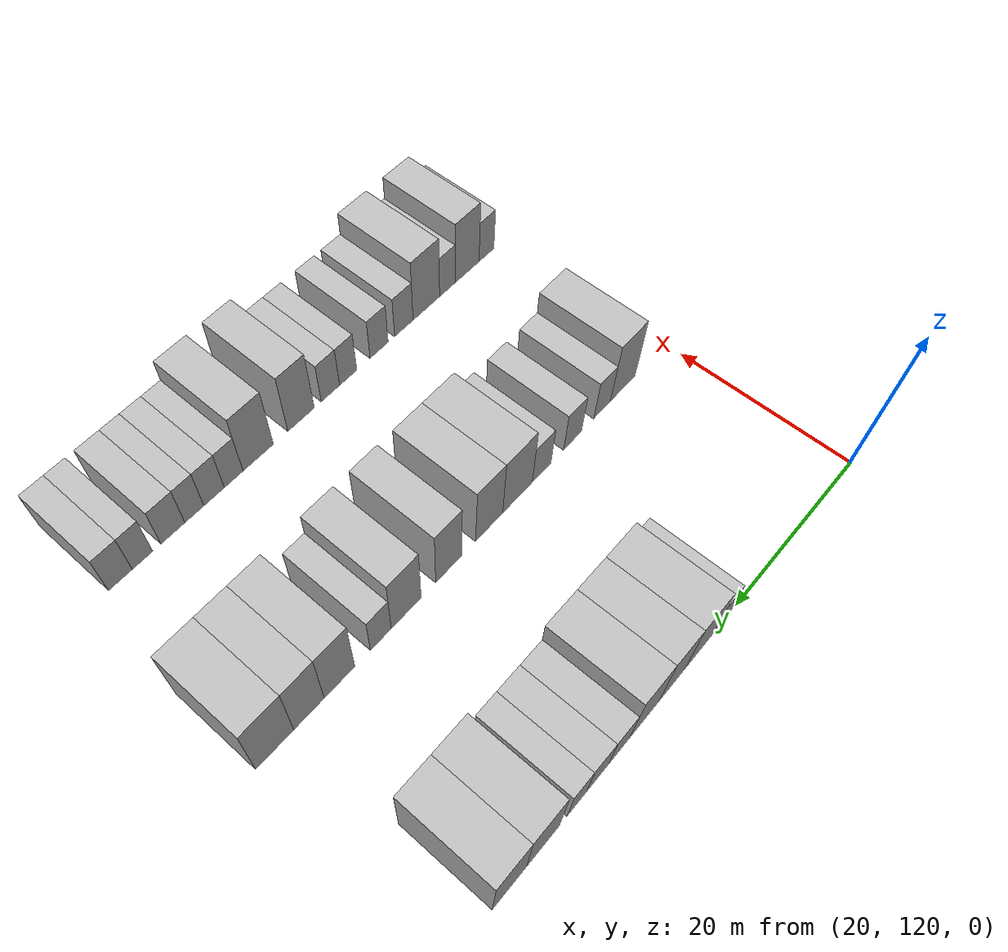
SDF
<sdf version="1.6">
 <world name="default">
  <model name="building_124">
   <static>1</static>
   <pose>25.0000 142.3898 0 0.000000 0.000000 0.000000</pose>
   <link name="link">
    <pose>0 0 3.00 0 0 0</pose>
    <collision name="collision"><geometry><box><size>10.0000 2.7167 6.0000</size></box></geometry></collision>
    <visual name="visual">
     <cast_shadows>0</cast_shadows>
     <geometry><box><size>10.0000 2.7167 6.0000</size></box></geometry>
     <material>
      <script>
       <uri>model://HANNAS_wall/materials/scripts</uri>
       <uri>model://HANNAS_wall/materials/textures</uri>
       <name>vrc/HANNAS_wall</name>
      </script>
     </material>
    </visual>
   </link>
  </model>
  <model name="building_125">
   <static>1</static>
   <pose>25.0000 145.9043 0 0.000000 0.000000 0.000000</pose>
   <link name="link">
    <pose>0 0 4.50 0 0 0</pose>
    <collision name="collision"><geometry><box><size>10.0000 4.3124 9.0000</size></box></geometry></collision>
    <visual name="visual">
     <cast_shadows>0</cast_shadows>
     <geometry><box><size>10.0000 4.3124 9.0000</size></box></geometry>
     <material>
      <script>
       <uri>model://HANNAS_wall/materials/scripts</uri>
       <uri>model://HANNAS_wall/materials/textures</uri>
       <name>vrc/HANNAS_wall</name>
      </script>
     </material>
    </visual>
   </link>
  </model>
  <model name="building_126">
   <static>1</static>
   <pose>25.0000 150.0240 0 0.000000 0.000000 0.000000</pose>
   <link name="link">
    <pose>0 0 4.50 0 0 0</pose>
    <collision name="collision"><geometry><box><size>10.0000 3.9271 9.0000</size></box></geometry></collision>
    <visual name="visual">
     <cast_shadows>0</cast_shadows>
     <geometry><box><size>10.0000 3.9271 9.0000</size></box></geometry>
     <material>
      <script>
       <uri>model://HANNAS_wall/materials/scripts</uri>
       <uri>model://HANNAS_wall/materials/textures</uri>
       <name>vrc/HANNAS_wall</name>
      </script>
     </material>
    </visual>
   </link>
  </model>
  <model name="building_127">
   <static>1</static>
   <pose>25.0000 154.1258 0 0.000000 0.000000 0.000000</pose>
   <link name="link">
    <pose>0 0 4.50 0 0 0</pose>
    <collision name="collision"><geometry><box><size>10.0000 4.2764 9.0000</size></box></geometry></collision>
    <visual name="visual">
     <cast_shadows>0</cast_shadows>
     <geometry><box><size>10.0000 4.2764 9.0000</size></box></geometry>
     <material>
      <script>
       <uri>model://HANNAS_wall/materials/scripts</uri>
       <uri>model://HANNAS_wall/materials/textures</uri>
       <name>vrc/HANNAS_wall</name>
      </script>
     </material>
    </visual>
   </link>
  </model>
  <model name="building_128">
   <static>1</static>
   <pose>25.0000 157.7301 0 0.000000 0.000000 0.000000</pose>
   <link name="link">
    <pose>0 0 3.00 0 0 0</pose>
    <collision name="collision"><geometry><box><size>10.0000 2.9322 6.0000</size></box></geometry></collision>
    <visual name="visual">
     <cast_shadows>0</cast_shadows>
     <geometry><box><size>10.0000 2.9322 6.0000</size></box></geometry>
     <material>
      <script>
       <uri>model://HANNAS_wall/materials/scripts</uri>
       <uri>model://HANNAS_wall/materials/textures</uri>
       <name>vrc/HANNAS_wall</name>
      </script>
     </material>
    </visual>
   </link>
  </model>
  <model name="building_129">
   <static>1</static>
   <pose>25.0000 160.6939 0 0.000000 0.000000 0.000000</pose>
   <link name="link">
    <pose>0 0 3.00 0 0 0</pose>
    <collision name="collision"><geometry><box><size>10.0000 2.9956 6.0000</size></box></geometry></collision>
    <visual name="visual">
     <cast_shadows>0</cast_shadows>
     <geometry><box><size>10.0000 2.9956 6.0000</size></box></geometry>
     <material>
      <script>
       <uri>model://HANNAS_wall/materials/scripts</uri>
       <uri>model://HANNAS_wall/materials/textures</uri>
       <name>vrc/HANNAS_wall</name>
      </script>
     </material>
    </visual>
   </link>
  </model>
  <model name="building_130">
   <static>1</static>
   <pose>25.0000 163.5191 0 0.000000 0.000000 0.000000</pose>
   <link name="link">
    <pose>0 0 3.00 0 0 0</pose>
    <collision name="collision"><geometry><box><size>10.0000 2.6548 6.0000</size></box></geometry></collision>
    <visual name="visual">
     <cast_shadows>0</cast_shadows>
     <geometry><box><size>10.0000 2.6548 6.0000</size></box></geometry>
     <material>
      <script>
       <uri>model://HANNAS_wall/materials/scripts</uri>
       <uri>model://HANNAS_wall/materials/textures</uri>
       <name>vrc/HANNAS_wall</name>
      </script>
     </material>
    </visual>
   </link>
  </model>
  <model name="building_131">
   <static>1</static>
   <pose>25.0000 167.9849 0 0.000000 0.000000 0.000000</pose>
   <link name="link">
    <pose>0 0 4.50 0 0 0</pose>
    <collision name="collision"><geometry><box><size>10.0000 4.2767 9.0000</size></box></geometry></collision>
    <visual name="visual">
     <cast_shadows>0</cast_shadows>
     <geometry><box><size>10.0000 4.2767 9.0000</size></box></geometry>
     <material>
      <script>
       <uri>model://HANNAS_wall/materials/scripts</uri>
       <uri>model://HANNAS_wall/materials/textures</uri>
       <name>vrc/HANNAS_wall</name>
      </script>
     </material>
    </visual>
   </link>
  </model>
  <model name="building_132">
   <static>1</static>
   <pose>25.0000 172.2452 0 0.000000 0.000000 0.000000</pose>
   <link name="link">
    <pose>0 0 4.50 0 0 0</pose>
    <collision name="collision"><geometry><box><size>10.0000 4.2440 9.0000</size></box></geometry></collision>
    <visual name="visual">
     <cast_shadows>0</cast_shadows>
     <geometry><box><size>10.0000 4.2440 9.0000</size></box></geometry>
     <material>
      <script>
       <uri>model://HANNAS_wall/materials/scripts</uri>
       <uri>model://HANNAS_wall/materials/textures</uri>
       <name>vrc/HANNAS_wall</name>
      </script>
     </material>
    </visual>
   </link>
  </model>
  <model name="building_314">
   <static>1</static>
   <pose>47.0000 127.5316 0 0.000000 0.000000 0.000000</pose>
   <link name="link">
    <pose>0 0 4.50 0 0 0</pose>
    <collision name="collision"><geometry><box><size>10.0000 4.1809 9.0000</size></box></geometry></collision>
    <visual name="visual">
     <cast_shadows>0</cast_shadows>
     <geometry><box><size>10.0000 4.1809 9.0000</size></box></geometry>
     <material>
      <script>
       <uri>model://HANNAS_wall/materials/scripts</uri>
       <uri>model://HANNAS_wall/materials/textures</uri>
       <name>vrc/HANNAS_wall</name>
      </script>
     </material>
    </visual>
   </link>
  </model>
  <model name="building_315">
   <static>1</static>
   <pose>47.0000 131.0111 0 0.000000 0.000000 0.000000</pose>
   <link name="link">
    <pose>0 0 3.00 0 0 0</pose>
    <collision name="collision"><geometry><box><size>10.0000 2.7779 6.0000</size></box></geometry></collision>
    <visual name="visual">
     <cast_shadows>0</cast_shadows>
     <geometry><box><size>10.0000 2.7779 6.0000</size></box></geometry>
     <material>
      <script>
       <uri>model://HANNAS_wall/materials/scripts</uri>
       <uri>model://HANNAS_wall/materials/textures</uri>
       <name>vrc/HANNAS_wall</name>
      </script>
     </material>
    </visual>
   </link>
  </model>
  <model name="building_316">
   <static>1</static>
   <pose>47.0000 135.8465 0 0.000000 0.000000 0.000000</pose>
   <link name="link">
    <pose>0 0 3.00 0 0 0</pose>
    <collision name="collision"><geometry><box><size>10.0000 2.8929 6.0000</size></box></geometry></collision>
    <visual name="visual">
     <cast_shadows>0</cast_shadows>
     <geometry><box><size>10.0000 2.8929 6.0000</size></box></geometry>
     <material>
      <script>
       <uri>model://HANNAS_wall/materials/scripts</uri>
       <uri>model://HANNAS_wall/materials/textures</uri>
       <name>vrc/HANNAS_wall</name>
      </script>
     </material>
    </visual>
   </link>
  </model>
  <model name="building_317">
   <static>1</static>
   <pose>47.0000 140.7449 0 0.000000 0.000000 0.000000</pose>
   <link name="link">
    <pose>0 0 3.00 0 0 0</pose>
    <collision name="collision"><geometry><box><size>10.0000 2.9039 6.0000</size></box></geometry></collision>
    <visual name="visual">
     <cast_shadows>0</cast_shadows>
     <geometry><box><size>10.0000 2.9039 6.0000</size></box></geometry>
     <material>
      <script>
       <uri>model://HANNAS_wall/materials/scripts</uri>
       <uri>model://HANNAS_wall/materials/textures</uri>
       <name>vrc/HANNAS_wall</name>
      </script>
     </material>
    </visual>
   </link>
  </model>
  <model name="building_318">
   <static>1</static>
   <pose>47.0000 144.4257 0 0.000000 0.000000 0.000000</pose>
   <link name="link">
    <pose>0 0 4.50 0 0 0</pose>
    <collision name="collision"><geometry><box><size>10.0000 4.4578 9.0000</size></box></geometry></collision>
    <visual name="visual">
     <cast_shadows>0</cast_shadows>
     <geometry><box><size>10.0000 4.4578 9.0000</size></box></geometry>
     <material>
      <script>
       <uri>model://HANNAS_wall/materials/scripts</uri>
       <uri>model://HANNAS_wall/materials/textures</uri>
       <name>vrc/HANNAS_wall</name>
      </script>
     </material>
    </visual>
   </link>
  </model>
  <model name="building_319">
   <static>1</static>
   <pose>47.0000 148.6413 0 0.000000 0.000000 0.000000</pose>
   <link name="link">
    <pose>0 0 4.50 0 0 0</pose>
    <collision name="collision"><geometry><box><size>10.0000 3.9733 9.0000</size></box></geometry></collision>
    <visual name="visual">
     <cast_shadows>0</cast_shadows>
     <geometry><box><size>10.0000 3.9733 9.0000</size></box></geometry>
     <material>
      <script>
       <uri>model://HANNAS_wall/materials/scripts</uri>
       <uri>model://HANNAS_wall/materials/textures</uri>
       <name>vrc/HANNAS_wall</name>
      </script>
     </material>
    </visual>
   </link>
  </model>
  <model name="building_320">
   <static>1</static>
   <pose>47.0000 154.4402 0 0.000000 0.000000 0.000000</pose>
   <link name="link">
    <pose>0 0 4.50 0 0 0</pose>
    <collision name="collision"><geometry><box><size>10.0000 3.6245 9.0000</size></box></geometry></collision>
    <visual name="visual">
     <cast_shadows>0</cast_shadows>
     <geometry><box><size>10.0000 3.6245 9.0000</size></box></geometry>
     <material>
      <script>
       <uri>model://HANNAS_wall/materials/scripts</uri>
       <uri>model://HANNAS_wall/materials/textures</uri>
       <name>vrc/HANNAS_wall</name>
      </script>
     </material>
    </visual>
   </link>
  </model>
  <model name="building_321">
   <static>1</static>
   <pose>47.0000 160.2484 0 0.000000 0.000000 0.000000</pose>
   <link name="link">
    <pose>0 0 4.50 0 0 0</pose>
    <collision name="collision"><geometry><box><size>10.0000 3.9920 9.0000</size></box></geometry></collision>
    <visual name="visual">
     <cast_shadows>0</cast_shadows>
     <geometry><box><size>10.0000 3.9920 9.0000</size></box></geometry>
     <material>
      <script>
       <uri>model://HANNAS_wall/materials/scripts</uri>
       <uri>model://HANNAS_wall/materials/textures</uri>
       <name>vrc/HANNAS_wall</name>
      </script>
     </material>
    </visual>
   </link>
  </model>
  <model name="building_322">
   <static>1</static>
   <pose>47.0000 163.6041 0 0.000000 0.000000 0.000000</pose>
   <link name="link">
    <pose>0 0 3.00 0 0 0</pose>
    <collision name="collision"><geometry><box><size>10.0000 2.7194 6.0000</size></box></geometry></collision>
    <visual name="visual">
     <cast_shadows>0</cast_shadows>
     <geometry><box><size>10.0000 2.7194 6.0000</size></box></geometry>
     <material>
      <script>
       <uri>model://HANNAS_wall/materials/scripts</uri>
       <uri>model://HANNAS_wall/materials/textures</uri>
       <name>vrc/HANNAS_wall</name>
      </script>
     </material>
    </visual>
   </link>
  </model>
  <model name="building_323">
   <static>1</static>
   <pose>47.0000 168.8767 0 0.000000 0.000000 0.000000</pose>
   <link name="link">
    <pose>0 0 4.50 0 0 0</pose>
    <collision name="collision"><geometry><box><size>10.0000 3.8259 9.0000</size></box></geometry></collision>
    <visual name="visual">
     <cast_shadows>0</cast_shadows>
     <geometry><box><size>10.0000 3.8259 9.0000</size></box></geometry>
     <material>
      <script>
       <uri>model://HANNAS_wall/materials/scripts</uri>
       <uri>model://HANNAS_wall/materials/textures</uri>
       <name>vrc/HANNAS_wall</name>
      </script>
     </material>
    </visual>
   </link>
  </model>
  <model name="building_324">
   <static>1</static>
   <pose>47.0000 172.6374 0 0.000000 0.000000 0.000000</pose>
   <link name="link">
    <pose>0 0 4.50 0 0 0</pose>
    <collision name="collision"><geometry><box><size>10.0000 3.6955 9.0000</size></box></geometry></collision>
    <visual name="visual">
     <cast_shadows>0</cast_shadows>
     <geometry><box><size>10.0000 3.6955 9.0000</size></box></geometry>
     <material>
      <script>
       <uri>model://HANNAS_wall/materials/scripts</uri>
       <uri>model://HANNAS_wall/materials/textures</uri>
       <name>vrc/HANNAS_wall</name>
      </script>
     </material>
    </visual>
   </link>
  </model>
  <model name="building_325">
   <static>1</static>
   <pose>47.0000 176.7284 0 0.000000 0.000000 0.000000</pose>
   <link name="link">
    <pose>0 0 4.50 0 0 0</pose>
    <collision name="collision"><geometry><box><size>10.0000 4.4867 9.0000</size></box></geometry></collision>
    <visual name="visual">
     <cast_shadows>0</cast_shadows>
     <geometry><box><size>10.0000 4.4867 9.0000</size></box></geometry>
     <material>
      <script>
       <uri>model://HANNAS_wall/materials/scripts</uri>
       <uri>model://HANNAS_wall/materials/textures</uri>
       <name>vrc/HANNAS_wall</name>
      </script>
     </material>
    </visual>
   </link>
  </model>
  <model name="building_508">
   <static>1</static>
   <pose>69.0000 123.0240 0 0.000000 0.000000 0.000000</pose>
   <link name="link">
    <pose>0 0 3.00 0 0 0</pose>
    <collision name="collision"><geometry><box><size>10.0000 2.5374 6.0000</size></box></geometry></collision>
    <visual name="visual">
     <cast_shadows>0</cast_shadows>
     <geometry><box><size>10.0000 2.5374 6.0000</size></box></geometry>
     <material>
      <script>
       <uri>model://HANNAS_wall/materials/scripts</uri>
       <uri>model://HANNAS_wall/materials/textures</uri>
       <name>vrc/HANNAS_wall</name>
      </script>
     </material>
    </visual>
   </link>
  </model>
  <model name="building_509">
   <static>1</static>
   <pose>69.0000 126.2952 0 0.000000 0.000000 0.000000</pose>
   <link name="link">
    <pose>0 0 4.50 0 0 0</pose>
    <collision name="collision"><geometry><box><size>10.0000 4.0049 9.0000</size></box></geometry></collision>
    <visual name="visual">
     <cast_shadows>0</cast_shadows>
     <geometry><box><size>10.0000 4.0049 9.0000</size></box></geometry>
     <material>
      <script>
       <uri>model://HANNAS_wall/materials/scripts</uri>
       <uri>model://HANNAS_wall/materials/textures</uri>
       <name>vrc/HANNAS_wall</name>
      </script>
     </material>
    </visual>
   </link>
  </model>
  <model name="building_510">
   <static>1</static>
   <pose>69.0000 129.5605 0 0.000000 0.000000 0.000000</pose>
   <link name="link">
    <pose>0 0 3.00 0 0 0</pose>
    <collision name="collision"><geometry><box><size>10.0000 2.5258 6.0000</size></box></geometry></collision>
    <visual name="visual">
     <cast_shadows>0</cast_shadows>
     <geometry><box><size>10.0000 2.5258 6.0000</size></box></geometry>
     <material>
      <script>
       <uri>model://HANNAS_wall/materials/scripts</uri>
       <uri>model://HANNAS_wall/materials/textures</uri>
       <name>vrc/HANNAS_wall</name>
      </script>
     </material>
    </visual>
   </link>
  </model>
  <model name="building_511">
   <static>1</static>
   <pose>69.0000 132.9426 0 0.000000 0.000000 0.000000</pose>
   <link name="link">
    <pose>0 0 4.50 0 0 0</pose>
    <collision name="collision"><geometry><box><size>10.0000 4.2384 9.0000</size></box></geometry></collision>
    <visual name="visual">
     <cast_shadows>0</cast_shadows>
     <geometry><box><size>10.0000 4.2384 9.0000</size></box></geometry>
     <material>
      <script>
       <uri>model://HANNAS_wall/materials/scripts</uri>
       <uri>model://HANNAS_wall/materials/textures</uri>
       <name>vrc/HANNAS_wall</name>
      </script>
     </material>
    </visual>
   </link>
  </model>
  <model name="building_512">
   <static>1</static>
   <pose>69.0000 136.5026 0 0.000000 0.000000 0.000000</pose>
   <link name="link">
    <pose>0 0 3.00 0 0 0</pose>
    <collision name="collision"><geometry><box><size>10.0000 2.8816 6.0000</size></box></geometry></collision>
    <visual name="visual">
     <cast_shadows>0</cast_shadows>
     <geometry><box><size>10.0000 2.8816 6.0000</size></box></geometry>
     <material>
      <script>
       <uri>model://HANNAS_wall/materials/scripts</uri>
       <uri>model://HANNAS_wall/materials/textures</uri>
       <name>vrc/HANNAS_wall</name>
      </script>
     </material>
    </visual>
   </link>
  </model>
  <model name="building_513">
   <static>1</static>
   <pose>69.0000 140.3170 0 0.000000 0.000000 0.000000</pose>
   <link name="link">
    <pose>0 0 3.00 0 0 0</pose>
    <collision name="collision"><geometry><box><size>10.0000 2.7472 6.0000</size></box></geometry></collision>
    <visual name="visual">
     <cast_shadows>0</cast_shadows>
     <geometry><box><size>10.0000 2.7472 6.0000</size></box></geometry>
     <material>
      <script>
       <uri>model://HANNAS_wall/materials/scripts</uri>
       <uri>model://HANNAS_wall/materials/textures</uri>
       <name>vrc/HANNAS_wall</name>
      </script>
     </material>
    </visual>
   </link>
  </model>
  <model name="building_514">
   <static>1</static>
   <pose>69.0000 144.9530 0 0.000000 0.000000 0.000000</pose>
   <link name="link">
    <pose>0 0 3.00 0 0 0</pose>
    <collision name="collision"><geometry><box><size>10.0000 2.5248 6.0000</size></box></geometry></collision>
    <visual name="visual">
     <cast_shadows>0</cast_shadows>
     <geometry><box><size>10.0000 2.5248 6.0000</size></box></geometry>
     <material>
      <script>
       <uri>model://HANNAS_wall/materials/scripts</uri>
       <uri>model://HANNAS_wall/materials/textures</uri>
       <name>vrc/HANNAS_wall</name>
      </script>
     </material>
    </visual>
   </link>
  </model>
  <model name="building_515">
   <static>1</static>
   <pose>69.0000 147.5476 0 0.000000 0.000000 0.000000</pose>
   <link name="link">
    <pose>0 0 3.00 0 0 0</pose>
    <collision name="collision"><geometry><box><size>10.0000 2.6645 6.0000</size></box></geometry></collision>
    <visual name="visual">
     <cast_shadows>0</cast_shadows>
     <geometry><box><size>10.0000 2.6645 6.0000</size></box></geometry>
     <material>
      <script>
       <uri>model://HANNAS_wall/materials/scripts</uri>
       <uri>model://HANNAS_wall/materials/textures</uri>
       <name>vrc/HANNAS_wall</name>
      </script>
     </material>
    </visual>
   </link>
  </model>
  <model name="building_516">
   <static>1</static>
   <pose>69.0000 151.7431 0 0.000000 0.000000 0.000000</pose>
   <link name="link">
    <pose>0 0 4.50 0 0 0</pose>
    <collision name="collision"><geometry><box><size>10.0000 3.7267 9.0000</size></box></geometry></collision>
    <visual name="visual">
     <cast_shadows>0</cast_shadows>
     <geometry><box><size>10.0000 3.7267 9.0000</size></box></geometry>
     <material>
      <script>
       <uri>model://HANNAS_wall/materials/scripts</uri>
       <uri>model://HANNAS_wall/materials/textures</uri>
       <name>vrc/HANNAS_wall</name>
      </script>
     </material>
    </visual>
   </link>
  </model>
  <model name="building_517">
   <static>1</static>
   <pose>69.0000 157.6490 0 0.000000 0.000000 0.000000</pose>
   <link name="link">
    <pose>0 0 4.50 0 0 0</pose>
    <collision name="collision"><geometry><box><size>10.0000 4.0850 9.0000</size></box></geometry></collision>
    <visual name="visual">
     <cast_shadows>0</cast_shadows>
     <geometry><box><size>10.0000 4.0850 9.0000</size></box></geometry>
     <material>
      <script>
       <uri>model://HANNAS_wall/materials/scripts</uri>
       <uri>model://HANNAS_wall/materials/textures</uri>
       <name>vrc/HANNAS_wall</name>
      </script>
     </material>
    </visual>
   </link>
  </model>
  <model name="building_518">
   <static>1</static>
   <pose>69.0000 160.9297 0 0.000000 0.000000 0.000000</pose>
   <link name="link">
    <pose>0 0 3.00 0 0 0</pose>
    <collision name="collision"><geometry><box><size>10.0000 2.4764 6.0000</size></box></geometry></collision>
    <visual name="visual">
     <cast_shadows>0</cast_shadows>
     <geometry><box><size>10.0000 2.4764 6.0000</size></box></geometry>
     <material>
      <script>
       <uri>model://HANNAS_wall/materials/scripts</uri>
       <uri>model://HANNAS_wall/materials/textures</uri>
       <name>vrc/HANNAS_wall</name>
      </script>
     </material>
    </visual>
   </link>
  </model>
  <model name="building_519">
   <static>1</static>
   <pose>69.0000 163.4893 0 0.000000 0.000000 0.000000</pose>
   <link name="link">
    <pose>0 0 3.00 0 0 0</pose>
    <collision name="collision"><geometry><box><size>10.0000 2.6428 6.0000</size></box></geometry></collision>
    <visual name="visual">
     <cast_shadows>0</cast_shadows>
     <geometry><box><size>10.0000 2.6428 6.0000</size></box></geometry>
     <material>
      <script>
       <uri>model://HANNAS_wall/materials/scripts</uri>
       <uri>model://HANNAS_wall/materials/textures</uri>
       <name>vrc/HANNAS_wall</name>
      </script>
     </material>
    </visual>
   </link>
  </model>
  <model name="building_520">
   <static>1</static>
   <pose>69.0000 166.0134 0 0.000000 0.000000 0.000000</pose>
   <link name="link">
    <pose>0 0 3.00 0 0 0</pose>
    <collision name="collision"><geometry><box><size>10.0000 2.4055 6.0000</size></box></geometry></collision>
    <visual name="visual">
     <cast_shadows>0</cast_shadows>
     <geometry><box><size>10.0000 2.4055 6.0000</size></box></geometry>
     <material>
      <script>
       <uri>model://HANNAS_wall/materials/scripts</uri>
       <uri>model://HANNAS_wall/materials/textures</uri>
       <name>vrc/HANNAS_wall</name>
      </script>
     </material>
    </visual>
   </link>
  </model>
  <model name="building_521">
   <static>1</static>
   <pose>69.0000 168.7086 0 0.000000 0.000000 0.000000</pose>
   <link name="link">
    <pose>0 0 3.00 0 0 0</pose>
    <collision name="collision"><geometry><box><size>10.0000 2.9849 6.0000</size></box></geometry></collision>
    <visual name="visual">
     <cast_shadows>0</cast_shadows>
     <geometry><box><size>10.0000 2.9849 6.0000</size></box></geometry>
     <material>
      <script>
       <uri>model://HANNAS_wall/materials/scripts</uri>
       <uri>model://HANNAS_wall/materials/textures</uri>
       <name>vrc/HANNAS_wall</name>
      </script>
     </material>
    </visual>
   </link>
  </model>
  <model name="building_522">
   <static>1</static>
   <pose>69.0000 172.4353 0 0.000000 0.000000 0.000000</pose>
   <link name="link">
    <pose>0 0 3.00 0 0 0</pose>
    <collision name="collision"><geometry><box><size>10.0000 2.4683 6.0000</size></box></geometry></collision>
    <visual name="visual">
     <cast_shadows>0</cast_shadows>
     <geometry><box><size>10.0000 2.4683 6.0000</size></box></geometry>
     <material>
      <script>
       <uri>model://HANNAS_wall/materials/scripts</uri>
       <uri>model://HANNAS_wall/materials/textures</uri>
       <name>vrc/HANNAS_wall</name>
      </script>
     </material>
    </visual>
   </link>
  </model>
  <model name="building_523">
   <static>1</static>
   <pose>69.0000 175.0858 0 0.000000 0.000000 0.000000</pose>
   <link name="link">
    <pose>0 0 3.00 0 0 0</pose>
    <collision name="collision"><geometry><box><size>10.0000 2.8328 6.0000</size></box></geometry></collision>
    <visual name="visual">
     <cast_shadows>0</cast_shadows>
     <geometry><box><size>10.0000 2.8328 6.0000</size></box></geometry>
     <material>
      <script>
       <uri>model://HANNAS_wall/materials/scripts</uri>
       <uri>model://HANNAS_wall/materials/textures</uri>
       <name>vrc/HANNAS_wall</name>
      </script>
     </material>
    </visual>
   </link>
  </model>
 </world>
</sdf>
